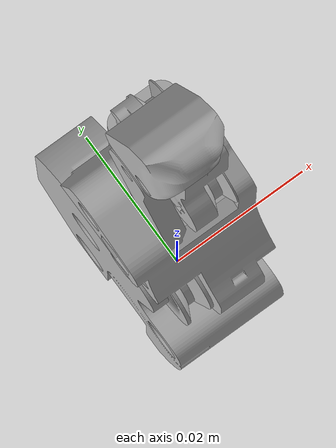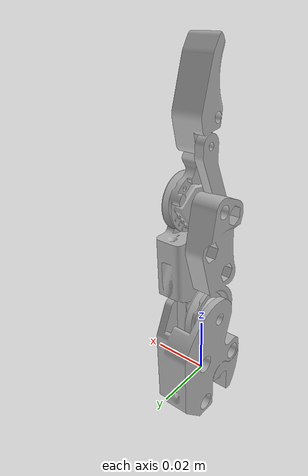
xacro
<?xml version="1.0" ?>
<robot name="finger_multibody" xmlns:xacro="http://www.ros.org/wiki/xacro">

<xacro:include filename="$(find finger_multibody_description)/urdf/materials.xacro" />
<xacro:include filename="$(find finger_multibody_description)/urdf/finger_multibody.trans" />
<xacro:include filename="$(find finger_multibody_description)/urdf/finger_multibody.gazebo" />
<link name="base_link">
  <inertial>
    <origin xyz="-0.0003774864346654952 0.005046599436291419 0.007762944735010138" rpy="0 0 0"/>
    <mass value="0.009810501088674256"/>
    <inertia ixx="2e-06" iyy="12e-06" izz="2e-06" ixy="0.0" iyz="-0.0" ixz="0.0"/>
  </inertial>
  <visual>
    <origin xyz="0 0 0" rpy="0 0 0"/>
    <geometry>
      <mesh filename="package://finger_multibody_description/meshes/base_link.stl" scale="0.001 0.001 0.001"/>
    </geometry>
    <material name="silver"/>
  </visual>
  <collision>
    <origin xyz="0 0 0" rpy="0 0 0"/>
    <geometry>
      <mesh filename="package://finger_multibody_description/meshes/base_link.stl" scale="0.001 0.001 0.001"/>
    </geometry>
  </collision>
</link>

<link name="Component3_1">
  <inertial>
    <origin xyz="0.005614720751094468 0.0005718473816604722 0.01663585386372114" rpy="0 0 0"/>
    <mass value="0.008332099055190471"/>
    <inertia ixx="2e-06" iyy="2e-06" izz="2e-06" ixy="-0.0" iyz="-0.0" ixz="0.0"/>
  </inertial>
  <visual>
    <origin xyz="0.00575 -0.001021 -0.026" rpy="0 0 0"/>
    <geometry>
      <mesh filename="package://finger_multibody_description/meshes/Component3_1.stl" scale="0.001 0.001 0.001"/>
    </geometry>
    <material name="silver"/>
  </visual>
  <collision>
    <origin xyz="0.00575 -0.001021 -0.026" rpy="0 0 0"/>
    <geometry>
      <mesh filename="package://finger_multibody_description/meshes/Component3_1.stl" scale="0.001 0.001 0.001"/>
    </geometry>
  </collision>
</link>

<link name="Component2_1">
  <inertial>
    <origin xyz="-0.003441963877938783 -0.00148720556888567 0.004973493702019313" rpy="0 0 0"/>
    <mass value="0.0014771245143456475"/>
    <inertia ixx="2e-06" iyy="2e-06" izz="2e-06" ixy="-0.0" iyz="0.0" ixz="-0.0"/>
  </inertial>
  <visual>
    <origin xyz="-0.0054 -0.003653 -0.066" rpy="0 0 0"/>
    <geometry>
      <mesh filename="package://finger_multibody_description/meshes/Component2_1.stl" scale="0.001 0.001 0.001"/>
    </geometry>
    <material name="silver"/>
  </visual>
  <collision>
    <origin xyz="-0.0054 -0.003653 -0.066" rpy="0 0 0"/>
    <geometry>
      <mesh filename="package://finger_multibody_description/meshes/Component2_1.stl" scale="0.001 0.001 0.001"/>
    </geometry>
  </collision>
</link>

<link name="Component4_1">
  <inertial>
    <origin xyz="-0.002251888869850009 0.0015547770688607728 0.006102691515930514" rpy="0 0 0"/>
    <mass value="0.0017939758440695596"/>
    <inertia ixx="2e-06" iyy="2e-06" izz="2e-06" ixy="-0.0" iyz="0.0" ixz="-0.0"/>
  </inertial>
  <visual>
    <origin xyz="-0.0023 5.6e-05 -0.090723" rpy="0 0 0"/>
    <geometry>
      <mesh filename="package://finger_multibody_description/meshes/Component4_1.stl" scale="0.001 0.001 0.001"/>
    </geometry>
    <material name="silver"/>
  </visual>
  <collision>
    <origin xyz="-0.0023 5.6e-05 -0.090723" rpy="0 0 0"/>
    <geometry>
      <mesh filename="package://finger_multibody_description/meshes/Component4_1.stl" scale="0.001 0.001 0.001"/>
    </geometry>
  </collision>
</link>

<link name="Component5_1">
  <inertial>
    <origin xyz="0.00162341590915104 0.002577682569217019 0.011430804335222741" rpy="0 0 0"/>
    <mass value="0.00043050786282414156"/>
    <inertia ixx="2e-06" iyy="2e-06" izz="2e-06" ixy="-0.0" iyz="-0.0" ixz="-0.0"/>
  </inertial>
  <visual>
    <origin xyz="0.0052 0.001611 -0.063121" rpy="0 0 0"/>
    <geometry>
      <mesh filename="package://finger_multibody_description/meshes/Component5_1.stl" scale="0.001 0.001 0.001"/>
    </geometry>
    <material name="silver"/>
  </visual>
  <collision>
    <origin xyz="0.0052 0.001611 -0.063121" rpy="0 0 0"/>
    <geometry>
      <mesh filename="package://finger_multibody_description/meshes/Component5_1.stl" scale="0.001 0.001 0.001"/>
    </geometry>
  </collision>
</link>

<joint name="Revolute 1" type="revolute">
  <origin xyz="-0.00575 0.001021 0.026" rpy="0 0 0"/>
  <parent link="base_link"/>
  <child link="Component3_1"/>
  <axis xyz="-1.0 -0.0 -0.0"/>
  <limit upper="0.017453" lower="-1.919862" effort="100" velocity="100"/>
</joint>

<joint name="Revolute 2" type="revolute">
  <origin xyz="0.01115 0.002632 0.04" rpy="0 0 0"/>
  <parent link="Component3_1"/>
  <child link="Component2_1"/>
  <axis xyz="1.0 0.0 0.0"/>
  <limit upper="1.745329" lower="0.0" effort="100" velocity="100"/>
</joint>

<joint name="Revolute 3" type="continuous">
  <origin xyz="-0.0031 -0.003709 0.024723" rpy="0 0 0"/>
  <parent link="Component2_1"/>
  <child link="Component4_1"/>
  <axis xyz="-1.0 -0.0 -0.0"/>
</joint>

<joint name="Revolute 4" type="continuous">
  <origin xyz="0.00055 -0.002632 0.037121" rpy="0 0 0"/>
  <parent link="Component3_1"/>
  <child link="Component5_1"/>
  <axis xyz="1.0 0.0 0.0"/>
</joint>

</robot>

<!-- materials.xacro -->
<robot name="finger_multibody" xmlns:xacro="http://www.ros.org/wiki/xacro" >

<material name="silver">
  <color rgba="0.700 0.700 0.700 1.000"/>
</material>

</robot>

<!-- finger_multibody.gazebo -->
<robot name="finger_multibody" xmlns:xacro="http://www.ros.org/wiki/xacro" >

<xacro:property name="body_color" value="Gazebo/Silver" />

<gazebo>
  <plugin name="control" filename="libgazebo_ros_control.so"/>
</gazebo>
<gazebo reference="base_link">
  <material>${body_color}</material>
  <mu1>0.2</mu1>
  <mu2>0.2</mu2>
  <selfCollide>true</selfCollide>
  <gravity>true</gravity>
</gazebo>

<gazebo reference="Component3_1">
  <material>${body_color}</material>
  <mu1>0.2</mu1>
  <mu2>0.2</mu2>
  <selfCollide>true</selfCollide>
</gazebo>

<gazebo reference="Component2_1">
  <material>${body_color}</material>
  <mu1>0.2</mu1>
  <mu2>0.2</mu2>
  <selfCollide>true</selfCollide>
</gazebo>

<gazebo reference="Component4_1">
  <material>${body_color}</material>
  <mu1>0.2</mu1>
  <mu2>0.2</mu2>
  <selfCollide>true</selfCollide>
</gazebo>

<gazebo reference="Component5_1">
  <material>${body_color}</material>
  <mu1>0.2</mu1>
  <mu2>0.2</mu2>
  <selfCollide>true</selfCollide>
</gazebo>

</robot>
